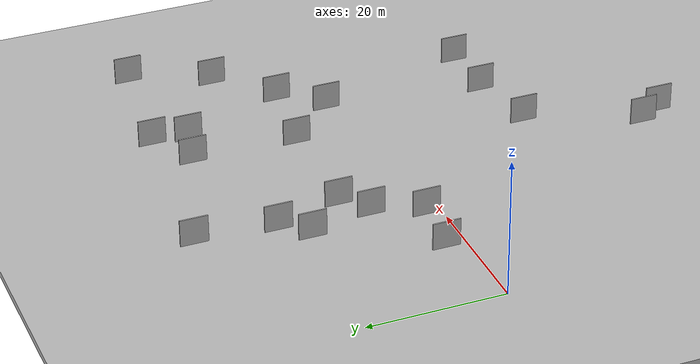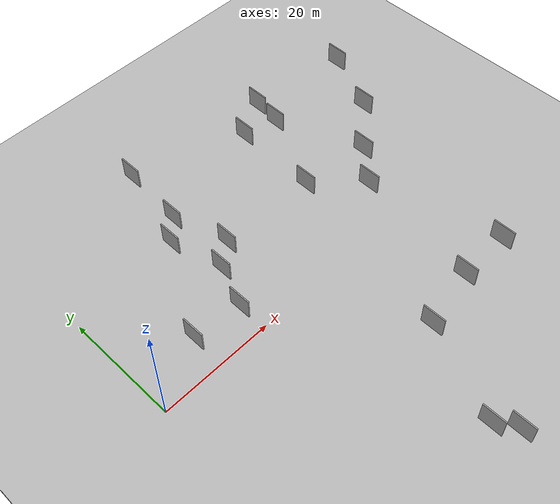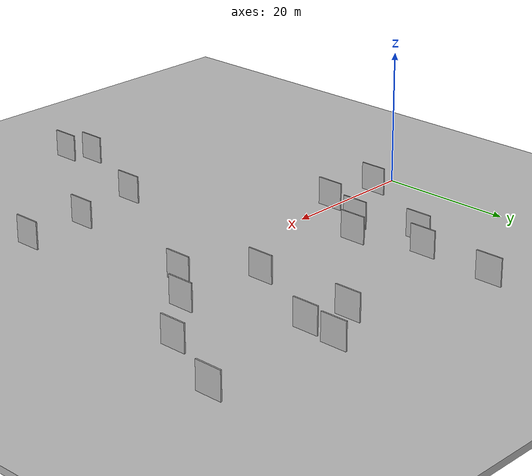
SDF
<?xml version="1.0" encoding="utf-8"?>

<sdf version="1.6">

   <world name="default">

      <gui fullscreen="0">

         <camera name="user_camera">

            <pose>-15 0 4.57585 0 0 0</pose>

            <view_controller>orbit</view_controller>

         </camera>

      </gui>

      <scene>

         <sky>

           <clouds>

             <speed>12</speed>

           </clouds>

         </sky>

         <ambient>0.4 0.4 0.4 1</ambient>

         <background>0.7 0.7 0.7 1</background>

         <shadows>1</shadows>

      </scene>

      <gravity>0 0 -9.8066</gravity>

      <magnetic_field>6e-06 2.3e-05 -4.2e-05</magnetic_field>

      <physics default="0" name="default_physics" type="ode">

         <ode>

            <solver>

               <type>quick</type>

               <iters>10</iters>

               <sor>1.0</sor>

               <use_dynamic_moi_rescaling>0</use_dynamic_moi_rescaling>

            </solver>

            <constraints>

               <cfm>0</cfm>

               <erp>0.2</erp>

               <contact_max_correcting_vel>100</contact_max_correcting_vel>

               <contact_surface_layer>0.001</contact_surface_layer>

            </constraints>

         </ode>

         <max_step_size>0.004</max_step_size>

         <real_time_factor>1</real_time_factor>

         <real_time_update_rate>250</real_time_update_rate>

      </physics>

      <light name="sun" type="directional">

         <cast_shadows>1</cast_shadows>

         <pose>0 0 10 0 0 0</pose>

         <diffuse>0.8 0.8 0.8 1</diffuse>

         <specular>0.2 0.2 0.2 1</specular>

         <attenuation>

            <range>1000</range>

            <constant>0.9</constant>

            <linear>0.01</linear>

            <quadratic>0.001</quadratic>

         </attenuation>

         <direction>-0.5 0.1 -0.9</direction>

      </light>

      <include>

         <name>ground_plane_1</name>

         <uri>model://HANNAS_ground_plane</uri>

         <pose>0 0 0  0 0 0</pose>

      </include>

      <include>

         <name>ground_plane_2</name>

         <uri>model://HANNAS_ground_plane</uri>

         <pose>100 0 0  0 0 0</pose>

      </include>

      <model name="HANNAS_wall_1">

         <static>1</static>

         <pose frame="">63.0688 18.7999 2.5 0.000000 0.000000 1.570796</pose>

         <link name="link">

            <pose frame="">0 0 2.00 0 0 0</pose>

            <collision name="collision">

               <geometry>

                  <box>

                     <size>4.00 0.2 4.00</size>

                  </box>

               </geometry>

               <max_contacts>10</max_contacts>

               <surface>

                  <contact>

                     <ode/>

                  </contact>

                  <bounce/>

                  <friction>

                     <torsional>

                        <ode/>

                     </torsional>

                     <ode/>

                  </friction>

               </surface>

            </collision>

            <visual name="visual">

               <cast_shadows>0</cast_shadows>

               <geometry>

                  <box>

                     <size>4.00 0.2 4.00</size>

                  </box>

               </geometry>

               <material>

                  <script>

                     <uri>model://HANNAS_wall/materials/scripts</uri>

                     <uri>model://HANNAS_wall/materials/textures</uri>

                     <name>vrc/HANNAS_wall</name>

                  </script>

               </material>

            </visual>

            <self_collide>0</self_collide>

            <enable_wind>0</enable_wind>

            <kinematic>0</kinematic>

         </link>

      </model>

      <model name="HANNAS_wall_2">

         <static>1</static>

         <pose frame="">43.0125 28.4453 2.5 0.000000 0.000000 1.570796</pose>

         <link name="link">

            <pose frame="">0 0 2.00 0 0 0</pose>

            <collision name="collision">

               <geometry>

                  <box>

                     <size>4.00 0.2 4.00</size>

                  </box>

               </geometry>

               <max_contacts>10</max_contacts>

               <surface>

                  <contact>

                     <ode/>

                  </contact>

                  <bounce/>

                  <friction>

                     <torsional>

                        <ode/>

                     </torsional>

                     <ode/>

                  </friction>

               </surface>

            </collision>

            <visual name="visual">

               <cast_shadows>0</cast_shadows>

               <geometry>

                  <box>

                     <size>4.00 0.2 4.00</size>

                  </box>

               </geometry>

               <material>

                  <script>

                     <uri>model://HANNAS_wall/materials/scripts</uri>

                     <uri>model://HANNAS_wall/materials/textures</uri>

                     <name>vrc/HANNAS_wall</name>

                  </script>

               </material>

            </visual>

            <self_collide>0</self_collide>

            <enable_wind>0</enable_wind>

            <kinematic>0</kinematic>

         </link>

      </model>

      <model name="HANNAS_wall_3">

         <static>1</static>

         <pose frame="">9.7882 4.4964 2.5 0.000000 0.000000 1.570796</pose>

         <link name="link">

            <pose frame="">0 0 2.00 0 0 0</pose>

            <collision name="collision">

               <geometry>

                  <box>

                     <size>4.00 0.2 4.00</size>

                  </box>

               </geometry>

               <max_contacts>10</max_contacts>

               <surface>

                  <contact>

                     <ode/>

                  </contact>

                  <bounce/>

                  <friction>

                     <torsional>

                        <ode/>

                     </torsional>

                     <ode/>

                  </friction>

               </surface>

            </collision>

            <visual name="visual">

               <cast_shadows>0</cast_shadows>

               <geometry>

                  <box>

                     <size>4.00 0.2 4.00</size>

                  </box>

               </geometry>

               <material>

                  <script>

                     <uri>model://HANNAS_wall/materials/scripts</uri>

                     <uri>model://HANNAS_wall/materials/textures</uri>

                     <name>vrc/HANNAS_wall</name>

                  </script>

               </material>

            </visual>

            <self_collide>0</self_collide>

            <enable_wind>0</enable_wind>

            <kinematic>0</kinematic>

         </link>

      </model>

      <model name="HANNAS_wall_4">

         <static>1</static>

         <pose frame="">23.2778 34.9524 2.5 0.000000 0.000000 1.570796</pose>

         <link name="link">

            <pose frame="">0 0 2.00 0 0 0</pose>

            <collision name="collision">

               <geometry>

                  <box>

                     <size>4.00 0.2 4.00</size>

                  </box>

               </geometry>

               <max_contacts>10</max_contacts>

               <surface>

                  <contact>

                     <ode/>

                  </contact>

                  <bounce/>

                  <friction>

                     <torsional>

                        <ode/>

                     </torsional>

                     <ode/>

                  </friction>

               </surface>

            </collision>

            <visual name="visual">

               <cast_shadows>0</cast_shadows>

               <geometry>

                  <box>

                     <size>4.00 0.2 4.00</size>

                  </box>

               </geometry>

               <material>

                  <script>

                     <uri>model://HANNAS_wall/materials/scripts</uri>

                     <uri>model://HANNAS_wall/materials/textures</uri>

                     <name>vrc/HANNAS_wall</name>

                  </script>

               </material>

            </visual>

            <self_collide>0</self_collide>

            <enable_wind>0</enable_wind>

            <kinematic>0</kinematic>

         </link>

      </model>

      <model name="HANNAS_wall_5">

         <static>1</static>

         <pose frame="">31.1167 -37.9669 2.5 0.000000 0.000000 1.570796</pose>

         <link name="link">

            <pose frame="">0 0 2.00 0 0 0</pose>

            <collision name="collision">

               <geometry>

                  <box>

                     <size>4.00 0.2 4.00</size>

                  </box>

               </geometry>

               <max_contacts>10</max_contacts>

               <surface>

                  <contact>

                     <ode/>

                  </contact>

                  <bounce/>

                  <friction>

                     <torsional>

                        <ode/>

                     </torsional>

                     <ode/>

                  </friction>

               </surface>

            </collision>

            <visual name="visual">

               <cast_shadows>0</cast_shadows>

               <geometry>

                  <box>

                     <size>4.00 0.2 4.00</size>

                  </box>

               </geometry>

               <material>

                  <script>

                     <uri>model://HANNAS_wall/materials/scripts</uri>

                     <uri>model://HANNAS_wall/materials/textures</uri>

                     <name>vrc/HANNAS_wall</name>

                  </script>

               </material>

            </visual>

            <self_collide>0</self_collide>

            <enable_wind>0</enable_wind>

            <kinematic>0</kinematic>

         </link>

      </model>

      <model name="HANNAS_wall_6">

         <static>1</static>

         <pose frame="">18.7914 19.9269 2.5 0.000000 0.000000 1.570796</pose>

         <link name="link">

            <pose frame="">0 0 2.00 0 0 0</pose>

            <collision name="collision">

               <geometry>

                  <box>

                     <size>4.00 0.2 4.00</size>

                  </box>

               </geometry>

               <max_contacts>10</max_contacts>

               <surface>

                  <contact>

                     <ode/>

                  </contact>

                  <bounce/>

                  <friction>

                     <torsional>

                        <ode/>

                     </torsional>

                     <ode/>

                  </friction>

               </surface>

            </collision>

            <visual name="visual">

               <cast_shadows>0</cast_shadows>

               <geometry>

                  <box>

                     <size>4.00 0.2 4.00</size>

                  </box>

               </geometry>

               <material>

                  <script>

                     <uri>model://HANNAS_wall/materials/scripts</uri>

                     <uri>model://HANNAS_wall/materials/textures</uri>

                     <name>vrc/HANNAS_wall</name>

                  </script>

               </material>

            </visual>

            <self_collide>0</self_collide>

            <enable_wind>0</enable_wind>

            <kinematic>0</kinematic>

         </link>

      </model>

      <model name="HANNAS_wall_7">

         <static>1</static>

         <pose frame="">22.2647 23.4619 2.5 0.000000 0.000000 1.570796</pose>

         <link name="link">

            <pose frame="">0 0 2.00 0 0 0</pose>

            <collision name="collision">

               <geometry>

                  <box>

                     <size>4.00 0.2 4.00</size>

                  </box>

               </geometry>

               <max_contacts>10</max_contacts>

               <surface>

                  <contact>

                     <ode/>

                  </contact>

                  <bounce/>

                  <friction>

                     <torsional>

                        <ode/>

                     </torsional>

                     <ode/>

                  </friction>

               </surface>

            </collision>

            <visual name="visual">

               <cast_shadows>0</cast_shadows>

               <geometry>

                  <box>

                     <size>4.00 0.2 4.00</size>

                  </box>

               </geometry>

               <material>

                  <script>

                     <uri>model://HANNAS_wall/materials/scripts</uri>

                     <uri>model://HANNAS_wall/materials/textures</uri>

                     <name>vrc/HANNAS_wall</name>

                  </script>

               </material>

            </visual>

            <self_collide>0</self_collide>

            <enable_wind>0</enable_wind>

            <kinematic>0</kinematic>

         </link>

      </model>

      <model name="HANNAS_wall_8">

         <static>1</static>

         <pose frame="">18.2670 3.7332 2.5 0.000000 0.000000 1.570796</pose>

         <link name="link">

            <pose frame="">0 0 2.00 0 0 0</pose>

            <collision name="collision">

               <geometry>

                  <box>

                     <size>4.00 0.2 4.00</size>

                  </box>

               </geometry>

               <max_contacts>10</max_contacts>

               <surface>

                  <contact>

                     <ode/>

                  </contact>

                  <bounce/>

                  <friction>

                     <torsional>

                        <ode/>

                     </torsional>

                     <ode/>

                  </friction>

               </surface>

            </collision>

            <visual name="visual">

               <cast_shadows>0</cast_shadows>

               <geometry>

                  <box>

                     <size>4.00 0.2 4.00</size>

                  </box>

               </geometry>

               <material>

                  <script>

                     <uri>model://HANNAS_wall/materials/scripts</uri>

                     <uri>model://HANNAS_wall/materials/textures</uri>

                     <name>vrc/HANNAS_wall</name>

                  </script>

               </material>

            </visual>

            <self_collide>0</self_collide>

            <enable_wind>0</enable_wind>

            <kinematic>0</kinematic>

         </link>

      </model>

      <model name="HANNAS_wall_9">

         <static>1</static>

         <pose frame="">25.0810 13.7698 2.5 0.000000 0.000000 1.570796</pose>

         <link name="link">

            <pose frame="">0 0 2.00 0 0 0</pose>

            <collision name="collision">

               <geometry>

                  <box>

                     <size>4.00 0.2 4.00</size>

                  </box>

               </geometry>

               <max_contacts>10</max_contacts>

               <surface>

                  <contact>

                     <ode/>

                  </contact>

                  <bounce/>

                  <friction>

                     <torsional>

                        <ode/>

                     </torsional>

                     <ode/>

                  </friction>

               </surface>

            </collision>

            <visual name="visual">

               <cast_shadows>0</cast_shadows>

               <geometry>

                  <box>

                     <size>4.00 0.2 4.00</size>

                  </box>

               </geometry>

               <material>

                  <script>

                     <uri>model://HANNAS_wall/materials/scripts</uri>

                     <uri>model://HANNAS_wall/materials/textures</uri>

                     <name>vrc/HANNAS_wall</name>

                  </script>

               </material>

            </visual>

            <self_collide>0</self_collide>

            <enable_wind>0</enable_wind>

            <kinematic>0</kinematic>

         </link>

      </model>

      <model name="HANNAS_wall_10">

         <static>1</static>

         <pose frame="">49.8712 5.9351 2.5 0.000000 0.000000 1.570796</pose>

         <link name="link">

            <pose frame="">0 0 2.00 0 0 0</pose>

            <collision name="collision">

               <geometry>

                  <box>

                     <size>4.00 0.2 4.00</size>

                  </box>

               </geometry>

               <max_contacts>10</max_contacts>

               <surface>

                  <contact>

                     <ode/>

                  </contact>

                  <bounce/>

                  <friction>

                     <torsional>

                        <ode/>

                     </torsional>

                     <ode/>

                  </friction>

               </surface>

            </collision>

            <visual name="visual">

               <cast_shadows>0</cast_shadows>

               <geometry>

                  <box>

                     <size>4.00 0.2 4.00</size>

                  </box>

               </geometry>

               <material>

                  <script>

                     <uri>model://HANNAS_wall/materials/scripts</uri>

                     <uri>model://HANNAS_wall/materials/textures</uri>

                     <name>vrc/HANNAS_wall</name>

                  </script>

               </material>

            </visual>

            <self_collide>0</self_collide>

            <enable_wind>0</enable_wind>

            <kinematic>0</kinematic>

         </link>

      </model>

      <model name="HANNAS_wall_11">

         <static>1</static>

         <pose frame="">49.8398 32.1812 2.5 0.000000 0.000000 1.570796</pose>

         <link name="link">

            <pose frame="">0 0 2.00 0 0 0</pose>

            <collision name="collision">

               <geometry>

                  <box>

                     <size>4.00 0.2 4.00</size>

                  </box>

               </geometry>

               <max_contacts>10</max_contacts>

               <surface>

                  <contact>

                     <ode/>

                  </contact>

                  <bounce/>

                  <friction>

                     <torsional>

                        <ode/>

                     </torsional>

                     <ode/>

                  </friction>

               </surface>

            </collision>

            <visual name="visual">

               <cast_shadows>0</cast_shadows>

               <geometry>

                  <box>

                     <size>4.00 0.2 4.00</size>

                  </box>

               </geometry>

               <material>

                  <script>

                     <uri>model://HANNAS_wall/materials/scripts</uri>

                     <uri>model://HANNAS_wall/materials/textures</uri>

                     <name>vrc/HANNAS_wall</name>

                  </script>

               </material>

            </visual>

            <self_collide>0</self_collide>

            <enable_wind>0</enable_wind>

            <kinematic>0</kinematic>

         </link>

      </model>

      <model name="HANNAS_wall_12">

         <static>1</static>

         <pose frame="">35.8172 -18.8402 2.5 0.000000 0.000000 1.570796</pose>

         <link name="link">

            <pose frame="">0 0 2.00 0 0 0</pose>

            <collision name="collision">

               <geometry>

                  <box>

                     <size>4.00 0.2 4.00</size>

                  </box>

               </geometry>

               <max_contacts>10</max_contacts>

               <surface>

                  <contact>

                     <ode/>

                  </contact>

                  <bounce/>

                  <friction>

                     <torsional>

                        <ode/>

                     </torsional>

                     <ode/>

                  </friction>

               </surface>

            </collision>

            <visual name="visual">

               <cast_shadows>0</cast_shadows>

               <geometry>

                  <box>

                     <size>4.00 0.2 4.00</size>

                  </box>

               </geometry>

               <material>

                  <script>

                     <uri>model://HANNAS_wall/materials/scripts</uri>

                     <uri>model://HANNAS_wall/materials/textures</uri>

                     <name>vrc/HANNAS_wall</name>

                  </script>

               </material>

            </visual>

            <self_collide>0</self_collide>

            <enable_wind>0</enable_wind>

            <kinematic>0</kinematic>

         </link>

      </model>

      <model name="HANNAS_wall_13">

         <static>1</static>

         <pose frame="">49.1476 27.0686 2.5 0.000000 0.000000 1.570796</pose>

         <link name="link">

            <pose frame="">0 0 2.00 0 0 0</pose>

            <collision name="collision">

               <geometry>

                  <box>

                     <size>4.00 0.2 4.00</size>

                  </box>

               </geometry>

               <max_contacts>10</max_contacts>

               <surface>

                  <contact>

                     <ode/>

                  </contact>

                  <bounce/>

                  <friction>

                     <torsional>

                        <ode/>

                     </torsional>

                     <ode/>

                  </friction>

               </surface>

            </collision>

            <visual name="visual">

               <cast_shadows>0</cast_shadows>

               <geometry>

                  <box>

                     <size>4.00 0.2 4.00</size>

                  </box>

               </geometry>

               <material>

                  <script>

                     <uri>model://HANNAS_wall/materials/scripts</uri>

                     <uri>model://HANNAS_wall/materials/textures</uri>

                     <name>vrc/HANNAS_wall</name>

                  </script>

               </material>

            </visual>

            <self_collide>0</self_collide>

            <enable_wind>0</enable_wind>

            <kinematic>0</kinematic>

         </link>

      </model>

      <model name="HANNAS_wall_14">

         <static>1</static>

         <pose frame="">68.2449 29.9205 2.5 0.000000 0.000000 1.570796</pose>

         <link name="link">

            <pose frame="">0 0 2.00 0 0 0</pose>

            <collision name="collision">

               <geometry>

                  <box>

                     <size>4.00 0.2 4.00</size>

                  </box>

               </geometry>

               <max_contacts>10</max_contacts>

               <surface>

                  <contact>

                     <ode/>

                  </contact>

                  <bounce/>

                  <friction>

                     <torsional>

                        <ode/>

                     </torsional>

                     <ode/>

                  </friction>

               </surface>

            </collision>

            <visual name="visual">

               <cast_shadows>0</cast_shadows>

               <geometry>

                  <box>

                     <size>4.00 0.2 4.00</size>

                  </box>

               </geometry>

               <material>

                  <script>

                     <uri>model://HANNAS_wall/materials/scripts</uri>

                     <uri>model://HANNAS_wall/materials/textures</uri>

                     <name>vrc/HANNAS_wall</name>

                  </script>

               </material>

            </visual>

            <self_collide>0</self_collide>

            <enable_wind>0</enable_wind>

            <kinematic>0</kinematic>

         </link>

      </model>

      <model name="HANNAS_wall_15">

         <static>1</static>

         <pose frame="">29.0342 -34.5104 2.5 0.000000 0.000000 1.570796</pose>

         <link name="link">

            <pose frame="">0 0 2.00 0 0 0</pose>

            <collision name="collision">

               <geometry>

                  <box>

                     <size>4.00 0.2 4.00</size>

                  </box>

               </geometry>

               <max_contacts>10</max_contacts>

               <surface>

                  <contact>

                     <ode/>

                  </contact>

                  <bounce/>

                  <friction>

                     <torsional>

                        <ode/>

                     </torsional>

                     <ode/>

                  </friction>

               </surface>

            </collision>

            <visual name="visual">

               <cast_shadows>0</cast_shadows>

               <geometry>

                  <box>

                     <size>4.00 0.2 4.00</size>

                  </box>

               </geometry>

               <material>

                  <script>

                     <uri>model://HANNAS_wall/materials/scripts</uri>

                     <uri>model://HANNAS_wall/materials/textures</uri>

                     <name>vrc/HANNAS_wall</name>

                  </script>

               </material>

            </visual>

            <self_collide>0</self_collide>

            <enable_wind>0</enable_wind>

            <kinematic>0</kinematic>

         </link>

      </model>

      <model name="HANNAS_wall_16">

         <static>1</static>

         <pose frame="">42.4405 13.2787 2.5 0.000000 0.000000 1.570796</pose>

         <link name="link">

            <pose frame="">0 0 2.00 0 0 0</pose>

            <collision name="collision">

               <geometry>

                  <box>

                     <size>4.00 0.2 4.00</size>

                  </box>

               </geometry>

               <max_contacts>10</max_contacts>

               <surface>

                  <contact>

                     <ode/>

                  </contact>

                  <bounce/>

                  <friction>

                     <torsional>

                        <ode/>

                     </torsional>

                     <ode/>

                  </friction>

               </surface>

            </collision>

            <visual name="visual">

               <cast_shadows>0</cast_shadows>

               <geometry>

                  <box>

                     <size>4.00 0.2 4.00</size>

                  </box>

               </geometry>

               <material>

                  <script>

                     <uri>model://HANNAS_wall/materials/scripts</uri>

                     <uri>model://HANNAS_wall/materials/textures</uri>

                     <name>vrc/HANNAS_wall</name>

                  </script>

               </material>

            </visual>

            <self_collide>0</self_collide>

            <enable_wind>0</enable_wind>

            <kinematic>0</kinematic>

         </link>

      </model>

      <model name="HANNAS_wall_17">

         <static>1</static>

         <pose frame="">21.0090 10.6609 2.5 0.000000 0.000000 1.570796</pose>

         <link name="link">

            <pose frame="">0 0 2.00 0 0 0</pose>

            <collision name="collision">

               <geometry>

                  <box>

                     <size>4.00 0.2 4.00</size>

                  </box>

               </geometry>

               <max_contacts>10</max_contacts>

               <surface>

                  <contact>

                     <ode/>

                  </contact>

                  <bounce/>

                  <friction>

                     <torsional>

                        <ode/>

                     </torsional>

                     <ode/>

                  </friction>

               </surface>

            </collision>

            <visual name="visual">

               <cast_shadows>0</cast_shadows>

               <geometry>

                  <box>

                     <size>4.00 0.2 4.00</size>

                  </box>

               </geometry>

               <material>

                  <script>

                     <uri>model://HANNAS_wall/materials/scripts</uri>

                     <uri>model://HANNAS_wall/materials/textures</uri>

                     <name>vrc/HANNAS_wall</name>

                  </script>

               </material>

            </visual>

            <self_collide>0</self_collide>

            <enable_wind>0</enable_wind>

            <kinematic>0</kinematic>

         </link>

      </model>

      <model name="HANNAS_wall_18">

         <static>1</static>

         <pose frame="">54.9546 11.6726 2.5 0.000000 0.000000 1.570796</pose>

         <link name="link">

            <pose frame="">0 0 2.00 0 0 0</pose>

            <collision name="collision">

               <geometry>

                  <box>

                     <size>4.00 0.2 4.00</size>

                  </box>

               </geometry>

               <max_contacts>10</max_contacts>

               <surface>

                  <contact>

                     <ode/>

                  </contact>

                  <bounce/>

                  <friction>

                     <torsional>

                        <ode/>

                     </torsional>

                     <ode/>

                  </friction>

               </surface>

            </collision>

            <visual name="visual">

               <cast_shadows>0</cast_shadows>

               <geometry>

                  <box>

                     <size>4.00 0.2 4.00</size>

                  </box>

               </geometry>

               <material>

                  <script>

                     <uri>model://HANNAS_wall/materials/scripts</uri>

                     <uri>model://HANNAS_wall/materials/textures</uri>

                     <name>vrc/HANNAS_wall</name>

                  </script>

               </material>

            </visual>

            <self_collide>0</self_collide>

            <enable_wind>0</enable_wind>

            <kinematic>0</kinematic>

         </link>

      </model>

      <model name="HANNAS_wall_19">

         <static>1</static>

         <pose frame="">46.3152 -16.8208 2.5 0.000000 0.000000 1.570796</pose>

         <link name="link">

            <pose frame="">0 0 2.00 0 0 0</pose>

            <collision name="collision">

               <geometry>

                  <box>

                     <size>4.00 0.2 4.00</size>

                  </box>

               </geometry>

               <max_contacts>10</max_contacts>

               <surface>

                  <contact>

                     <ode/>

                  </contact>

                  <bounce/>

                  <friction>

                     <torsional>

                        <ode/>

                     </torsional>

                     <ode/>

                  </friction>

               </surface>

            </collision>

            <visual name="visual">

               <cast_shadows>0</cast_shadows>

               <geometry>

                  <box>

                     <size>4.00 0.2 4.00</size>

                  </box>

               </geometry>

               <material>

                  <script>

                     <uri>model://HANNAS_wall/materials/scripts</uri>

                     <uri>model://HANNAS_wall/materials/textures</uri>

                     <name>vrc/HANNAS_wall</name>

                  </script>

               </material>

            </visual>

            <self_collide>0</self_collide>

            <enable_wind>0</enable_wind>

            <kinematic>0</kinematic>

         </link>

      </model>

      <model name="HANNAS_wall_20">

         <static>1</static>

         <pose frame="">55.8280 -16.7427 2.5 0.000000 0.000000 1.570796</pose>

         <link name="link">

            <pose frame="">0 0 2.00 0 0 0</pose>

            <collision name="collision">

               <geometry>

                  <box>

                     <size>4.00 0.2 4.00</size>

                  </box>

               </geometry>

               <max_contacts>10</max_contacts>

               <surface>

                  <contact>

                     <ode/>

                  </contact>

                  <bounce/>

                  <friction>

                     <torsional>

                        <ode/>

                     </torsional>

                     <ode/>

                  </friction>

               </surface>

            </collision>

            <visual name="visual">

               <cast_shadows>0</cast_shadows>

               <geometry>

                  <box>

                     <size>4.00 0.2 4.00</size>

                  </box>

               </geometry>

               <material>

                  <script>

                     <uri>model://HANNAS_wall/materials/scripts</uri>

                     <uri>model://HANNAS_wall/materials/textures</uri>

                     <name>vrc/HANNAS_wall</name>

                  </script>

               </material>

            </visual>

            <self_collide>0</self_collide>

            <enable_wind>0</enable_wind>

            <kinematic>0</kinematic>

         </link>

      </model>

   </world>

</sdf>

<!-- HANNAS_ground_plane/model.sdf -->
<sdf version="1.4">
<model name="HANNAS_ground_plane">
  <static>true</static>
    <link name="link">
      <collision name="collision">
        <geometry>
          <plane>
            <normal>0 0 1</normal>
            <size>1000 1000</size>
          </plane>
        </geometry>
        <surface>
          <friction>
            <ode>
              <mu>100</mu>
              <mu2>50</mu2>
            </ode>
          </friction>
        </surface>
      </collision>
      <visual name="visual">
        <cast_shadows>false</cast_shadows>
        <geometry>
          <plane>
            <normal>0 0 1</normal>
            <size>1000 1000</size>
          </plane>
        </geometry>
        <material>
          <script>
            <uri>model://HANNAS_ground_plane/materials/scripts/HANNAS_ground_plane.material</uri>
	    <uri>model://HANNAS_ground_plane/materials/textures</uri>
            <name>HANNASGroundPlane/Image</name>
          </script>
        </material>
      </visual>
    </link>
  </model>
</sdf>
